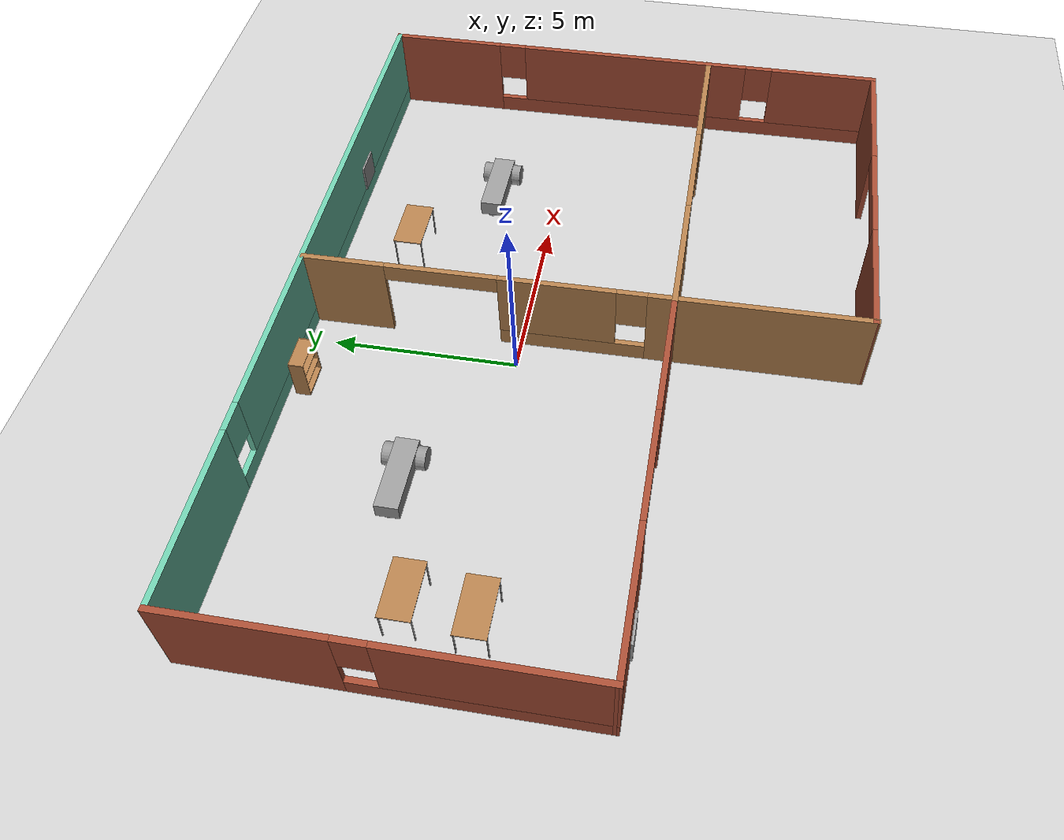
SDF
<sdf version="1.6">
 <world name="default">
  <plugin name="Welcome_Message" filename="libWelcome_Message.so"/>
  <light name="sun" type="directional">
   <pose>0 0 10 0 -0 0</pose>
   <diffuse>0.8 0.8 0.8 1</diffuse>
   <specular>0.2 0.2 0.2 1</specular>
   <attenuation>
    <range>1000</range>
    <constant>0.9</constant>
    <linear>0.01</linear>
    <quadratic>0.001</quadratic>
   </attenuation>
   <direction>-0.5 0.1 -0.9</direction>
  </light>
  <model name="ground_plane">
   <static>1</static>
   <link name="link">
    <collision name="collision">
     <geometry><plane><normal>0 0 1</normal><size>100 100</size></plane></geometry>
     <surface>
      <contact><collide_bitmask>65535</collide_bitmask></contact>
      <friction><ode><mu>100</mu><mu2>50</mu2></ode></friction>
     </surface>
    </collision>
    <visual name="visual">
     <cast_shadows>0</cast_shadows>
     <geometry><plane><normal>0 0 1</normal><size>100 100</size></plane></geometry>
     <material>
      <script><uri>file://media/materials/scripts/gazebo.material</uri><name>Gazebo/Grey</name></script>
     </material>
    </visual>
   </link>
  </model>
  <gravity>0 0 -9.8</gravity>
  <magnetic_field>6e-06 2.3e-05 -4.2e-05</magnetic_field>
  <atmosphere type="adiabatic"/>
  <physics name="default_physics" default="0" type="ode">
   <max_step_size>0.001</max_step_size>
   <real_time_factor>1</real_time_factor>
   <real_time_update_rate>1000</real_time_update_rate>
  </physics>
  <scene><ambient>0.4 0.4 0.4 1</ambient><background>0.7 0.7 0.7 1</background><shadows>1</shadows></scene>
  <audio><device>default</device></audio>
  <spherical_coordinates>
   <surface_model>EARTH_WGS84</surface_model>
   <latitude_deg>0</latitude_deg>
   <longitude_deg>0</longitude_deg>
   <elevation>0</elevation>
   <heading_deg>0</heading_deg>
  </spherical_coordinates>
  <model name="Building">
   <pose>0.681193 -1.65168 0 0 -0 0</pose>
   <link name="Wall_0">
    <pose>-0.035596 7.44422 0 0 -0 -0.001555</pose>
    <visual name="Wall_0_Visual_0">
     <pose>-7.76242 0 1.25 0 -0 0</pose>
     <geometry><box><size>4.564 0.15 2.5</size></box></geometry>
     <material>
      <script><uri>file://media/materials/scripts/gazebo.material</uri><name>Gazebo/Grey</name></script>
      <ambient>0.435294 0.796078 0.67451 1</ambient>
     </material>
     <meta><layer>0</layer></meta>
    </visual>
    <collision name="Wall_0_Collision_0">
     <geometry><box><size>4.564 0.15 2.5</size></box></geometry>
     <pose>-7.76242 0 1.25 0 -0 0</pose>
    </collision>
    <visual name="Wall_0_Visual_1">
     <pose>2.282 0 0.25 0 -0 0</pose>
     <geometry><box><size>15.5248 0.15 0.5</size></box></geometry>
     <material>
      <script><uri>file://media/materials/scripts/gazebo.material</uri><name>Gazebo/Grey</name></script>
      <ambient>0.435294 0.796078 0.67451 1</ambient>
     </material>
     <meta><layer>0</layer></meta>
    </visual>
    <collision name="Wall_0_Collision_1">
     <geometry><box><size>15.5248 0.15 0.5</size></box></geometry>
     <pose>2.282 0 0.25 0 -0 0</pose>
    </collision>
    <visual name="Wall_0_Visual_2">
     <pose>2.682 0 1.5 0 -0 0</pose>
     <geometry><box><size>14.7248 0.15 2</size></box></geometry>
     <material>
      <script><uri>file://media/materials/scripts/gazebo.material</uri><name>Gazebo/Grey</name></script>
      <ambient>0.435294 0.796078 0.67451 1</ambient>
     </material>
     <meta><layer>0</layer></meta>
    </visual>
    <collision name="Wall_0_Collision_2">
     <geometry><box><size>14.7248 0.15 2</size></box></geometry>
     <pose>2.682 0 1.5 0 -0 0</pose>
    </collision>
    <visual name="Wall_0_Visual_3">
     <pose>-5.08042 0 1.9 0 -0 0</pose>
     <geometry><box><size>0.8 0.15 1.2</size></box></geometry>
     <material>
      <script><uri>file://media/materials/scripts/gazebo.material</uri><name>Gazebo/Grey</name></script>
      <ambient>0.435294 0.796078 0.67451 1</ambient>
     </material>
     <meta><layer>0</layer></meta>
    </visual>
    <collision name="Wall_0_Collision_3">
     <geometry><box><size>0.8 0.15 1.2</size></box></geometry>
     <pose>-5.08042 0 1.9 0 -0 0</pose>
    </collision>
   </link>
   <link name="Wall_10">
    <pose>0.170743 -0.034647 0 0 -0 1.57755</pose>
    <visual name="Wall_10_Visual_0">
     <pose>-4.58028 0 1.25 0 -0 0</pose>
     <geometry><box><size>5.83943 0.15 2.5</size></box></geometry>
     <material>
      <script><uri>file://media/materials/scripts/gazebo.material</uri><name>Gazebo/Wood</name></script>
      <ambient>1 1 1 1</ambient>
     </material>
     <meta><layer>0</layer></meta>
    </visual>
    <collision name="Wall_10_Collision_0">
     <geometry><box><size>5.83943 0.15 2.5</size></box></geometry>
     <pose>-4.58028 0 1.25 0 -0 0</pose>
    </collision>
    <visual name="Wall_10_Visual_1">
     <pose>6.37599 0 1.25 0 -0 0</pose>
     <geometry><box><size>2.24801 0.15 2.5</size></box></geometry>
     <material>
      <script><uri>file://media/materials/scripts/gazebo.material</uri><name>Gazebo/Wood</name></script>
      <ambient>1 1 1 1</ambient>
     </material>
     <meta><layer>0</layer></meta>
    </visual>
    <collision name="Wall_10_Collision_1">
     <geometry><box><size>2.24801 0.15 2.5</size></box></geometry>
     <pose>6.37599 0 1.25 0 -0 0</pose>
    </collision>
    <visual name="Wall_10_Visual_2">
     <pose>0.29571 0 0.25 0 -0 0</pose>
     <geometry><box><size>3.91255 0.15 0.5</size></box></geometry>
     <material>
      <script><uri>file://media/materials/scripts/gazebo.material</uri><name>Gazebo/Wood</name></script>
      <ambient>1 1 1 1</ambient>
     </material>
     <meta><layer>0</layer></meta>
    </visual>
    <collision name="Wall_10_Collision_2">
     <geometry><box><size>3.91255 0.15 0.5</size></box></geometry>
     <pose>0.29571 0 0.25 0 -0 0</pose>
    </collision>
    <visual name="Wall_10_Visual_3">
     <pose>0.69571 0 1.5 0 -0 0</pose>
     <geometry><box><size>3.11255 0.15 2</size></box></geometry>
     <material>
      <script><uri>file://media/materials/scripts/gazebo.material</uri><name>Gazebo/Wood</name></script>
      <ambient>1 1 1 1</ambient>
     </material>
     <meta><layer>0</layer></meta>
    </visual>
    <collision name="Wall_10_Collision_3">
     <geometry><box><size>3.11255 0.15 2</size></box></geometry>
     <pose>0.69571 0 1.5 0 -0 0</pose>
    </collision>
    <visual name="Wall_10_Visual_4">
     <pose>-1.26057 0 1.9 0 -0 0</pose>
     <geometry><box><size>0.8 0.15 1.2</size></box></geometry>
     <material>
      <script><uri>file://media/materials/scripts/gazebo.material</uri><name>Gazebo/Wood</name></script>
      <ambient>1 1 1 1</ambient>
     </material>
     <meta><layer>0</layer></meta>
    </visual>
    <collision name="Wall_10_Collision_4">
     <geometry><box><size>0.8 0.15 1.2</size></box></geometry>
     <pose>-1.26057 0 1.9 0 -0 0</pose>
    </collision>
    <visual name="Wall_10_Visual_5">
     <pose>3.75199 0 2.25 0 -0 0</pose>
     <geometry><box><size>3 0.15 0.5</size></box></geometry>
     <material>
      <script><uri>file://media/materials/scripts/gazebo.material</uri><name>Gazebo/Wood</name></script>
      <ambient>1 1 1 1</ambient>
     </material>
     <meta><layer>0</layer></meta>
    </visual>
    <collision name="Wall_10_Collision_5">
     <geometry><box><size>3 0.15 0.5</size></box></geometry>
     <pose>3.75199 0 2.25 0 -0 0</pose>
    </collision>
   </link>
   <link name="Wall_12">
    <pose>5.0939 -2.39528 0 0 -0 0</pose>
    <visual name="Wall_12_Visual_0">
     <pose>-3.23118 0 1.25 0 -0 0</pose>
     <geometry><box><size>3.53764 0.15 2.5</size></box></geometry>
     <material>
      <script><uri>file://media/materials/scripts/gazebo.material</uri><name>Gazebo/Wood</name></script>
      <ambient>1 1 1 1</ambient>
     </material>
     <meta><layer>0</layer></meta>
    </visual>
    <collision name="Wall_12_Collision_0">
     <geometry><box><size>3.53764 0.15 2.5</size></box></geometry>
     <pose>-3.23118 0 1.25 0 -0 0</pose>
    </collision>
    <visual name="Wall_12_Visual_1">
     <pose>3.26882 0 1.25 0 -0 0</pose>
     <geometry><box><size>3.46236 0.15 2.5</size></box></geometry>
     <material>
      <script><uri>file://media/materials/scripts/gazebo.material</uri><name>Gazebo/Wood</name></script>
      <ambient>1 1 1 1</ambient>
     </material>
     <meta><layer>0</layer></meta>
    </visual>
    <collision name="Wall_12_Collision_1">
     <geometry><box><size>3.46236 0.15 2.5</size></box></geometry>
     <pose>3.26882 0 1.25 0 -0 0</pose>
    </collision>
    <visual name="Wall_12_Visual_2">
     <pose>0.037642 0 2.25 0 -0 0</pose>
     <geometry><box><size>3 0.15 0.5</size></box></geometry>
     <material>
      <script><uri>file://media/materials/scripts/gazebo.material</uri><name>Gazebo/Wood</name></script>
      <ambient>1 1 1 1</ambient>
     </material>
     <meta><layer>0</layer></meta>
    </visual>
    <collision name="Wall_12_Collision_2">
     <geometry><box><size>3 0.15 0.5</size></box></geometry>
     <pose>0.037642 0 2.25 0 -0 0</pose>
    </collision>
   </link>
   <link name="Wall_2">
    <pose>-10.0206 2.53472 0 0 -0 -1.57394</pose>
    <visual name="Wall_2_Visual_0">
     <pose>-2.98846 0 1.25 0 -0 0</pose>
     <geometry><box><size>4.0232 0.15 2.5</size></box></geometry>
     <material>
      <script><uri>file://media/materials/scripts/gazebo.material</uri><name>Gazebo/Bricks</name></script>
      <ambient>1 1 1 1</ambient>
     </material>
     <meta><layer>0</layer></meta>
    </visual>
    <collision name="Wall_2_Collision_0">
     <geometry><box><size>4.0232 0.15 2.5</size></box></geometry>
     <pose>-2.98846 0 1.25 0 -0 0</pose>
    </collision>
    <visual name="Wall_2_Visual_1">
     <pose>2.0116 0 0.25 0 -0 0</pose>
     <geometry><box><size>5.97691 0.15 0.5</size></box></geometry>
     <material>
      <script><uri>file://media/materials/scripts/gazebo.material</uri><name>Gazebo/Bricks</name></script>
      <ambient>1 1 1 1</ambient>
     </material>
     <meta><layer>0</layer></meta>
    </visual>
    <collision name="Wall_2_Collision_1">
     <geometry><box><size>5.97691 0.15 0.5</size></box></geometry>
     <pose>2.0116 0 0.25 0 -0 0</pose>
    </collision>
    <visual name="Wall_2_Visual_2">
     <pose>2.4116 0 1.5 0 -0 0</pose>
     <geometry><box><size>5.17691 0.15 2</size></box></geometry>
     <material>
      <script><uri>file://media/materials/scripts/gazebo.material</uri><name>Gazebo/Bricks</name></script>
      <ambient>1 1 1 1</ambient>
     </material>
     <meta><layer>0</layer></meta>
    </visual>
    <collision name="Wall_2_Collision_2">
     <geometry><box><size>5.17691 0.15 2</size></box></geometry>
     <pose>2.4116 0 1.5 0 -0 0</pose>
    </collision>
    <visual name="Wall_2_Visual_3">
     <pose>-0.576857 0 1.9 0 -0 0</pose>
     <geometry><box><size>0.8 0.15 1.2</size></box></geometry>
     <material>
      <script><uri>file://media/materials/scripts/gazebo.material</uri><name>Gazebo/Bricks</name></script>
      <ambient>1 1 1 1</ambient>
     </material>
     <meta><layer>0</layer></meta>
    </visual>
    <collision name="Wall_2_Collision_3">
     <geometry><box><size>0.8 0.15 1.2</size></box></geometry>
     <pose>-0.576857 0 1.9 0 -0 0</pose>
    </collision>
   </link>
   <link name="Wall_4">
    <pose>-4.9861 -2.39028 0 0 -0 0</pose>
    <visual name="Wall_4_Visual_0">
     <pose>-3.23437 0 1.25 0 -0 0</pose>
     <geometry><box><size>3.78126 0.15 2.5</size></box></geometry>
     <material>
      <script><uri>file://media/materials/scripts/gazebo.material</uri><name>Gazebo/Bricks</name></script>
      <ambient>1 1 1 1</ambient>
     </material>
     <meta><layer>0</layer></meta>
    </visual>
    <collision name="Wall_4_Collision_0">
     <geometry><box><size>3.78126 0.15 2.5</size></box></geometry>
     <pose>-3.23437 0 1.25 0 -0 0</pose>
    </collision>
    <visual name="Wall_4_Visual_1">
     <pose>3.39063 0 1.25 0 -0 0</pose>
     <geometry><box><size>3.46874 0.15 2.5</size></box></geometry>
     <material>
      <script><uri>file://media/materials/scripts/gazebo.material</uri><name>Gazebo/Bricks</name></script>
      <ambient>1 1 1 1</ambient>
     </material>
     <meta><layer>0</layer></meta>
    </visual>
    <collision name="Wall_4_Collision_1">
     <geometry><box><size>3.46874 0.15 2.5</size></box></geometry>
     <pose>3.39063 0 1.25 0 -0 0</pose>
    </collision>
    <visual name="Wall_4_Visual_2">
     <pose>0.15626 0 2.25 0 -0 0</pose>
     <geometry><box><size>3 0.15 0.5</size></box></geometry>
     <material>
      <script><uri>file://media/materials/scripts/gazebo.material</uri><name>Gazebo/Bricks</name></script>
      <ambient>1 1 1 1</ambient>
     </material>
     <meta><layer>0</layer></meta>
    </visual>
    <collision name="Wall_4_Collision_2">
     <geometry><box><size>3 0.15 0.5</size></box></geometry>
     <pose>0.15626 0 2.25 0 -0 0</pose>
    </collision>
   </link>
   <link name="Wall_6">
    <pose>9.98486 0.004038 0 0 -0 -1.56393</pose>
    <visual name="Wall_6_Visual_0">
     <pose>-5.83702 0 1.25 0 -0 0</pose>
     <geometry><box><size>3.32597 0.15 2.5</size></box></geometry>
     <material>
      <script><uri>file://media/materials/scripts/gazebo.material</uri><name>Gazebo/Bricks</name></script>
      <ambient>1 1 1 1</ambient>
     </material>
     <meta><layer>0</layer></meta>
    </visual>
    <collision name="Wall_6_Collision_0">
     <geometry><box><size>3.32597 0.15 2.5</size></box></geometry>
     <pose>-5.83702 0 1.25 0 -0 0</pose>
    </collision>
    <visual name="Wall_6_Visual_1">
     <pose>1.66298 0 0.25 0 -0 0</pose>
     <geometry><box><size>11.674 0.15 0.5</size></box></geometry>
     <material>
      <script><uri>file://media/materials/scripts/gazebo.material</uri><name>Gazebo/Bricks</name></script>
      <ambient>1 1 1 1</ambient>
     </material>
     <meta><layer>0</layer></meta>
    </visual>
    <collision name="Wall_6_Collision_1">
     <geometry><box><size>11.674 0.15 0.5</size></box></geometry>
     <pose>1.66298 0 0.25 0 -0 0</pose>
    </collision>
    <visual name="Wall_6_Visual_2">
     <pose>0.080934 0 1.5 0 -0 0</pose>
     <geometry><box><size>6.90993 0.15 2</size></box></geometry>
     <material>
      <script><uri>file://media/materials/scripts/gazebo.material</uri><name>Gazebo/Bricks</name></script>
      <ambient>1 1 1 1</ambient>
     </material>
     <meta><layer>0</layer></meta>
    </visual>
    <collision name="Wall_6_Collision_2">
     <geometry><box><size>6.90993 0.15 2</size></box></geometry>
     <pose>0.080934 0 1.5 0 -0 0</pose>
    </collision>
    <visual name="Wall_6_Visual_3">
     <pose>5.91795 0 1.5 0 -0 0</pose>
     <geometry><box><size>3.1641 0.15 2</size></box></geometry>
     <material>
      <script><uri>file://media/materials/scripts/gazebo.material</uri><name>Gazebo/Bricks</name></script>
      <ambient>1 1 1 1</ambient>
     </material>
     <meta><layer>0</layer></meta>
    </visual>
    <collision name="Wall_6_Collision_3">
     <geometry><box><size>3.1641 0.15 2</size></box></geometry>
     <pose>5.91795 0 1.5 0 -0 0</pose>
    </collision>
    <visual name="Wall_6_Visual_4">
     <pose>-3.77403 0 1.9 0 -0 0</pose>
     <geometry><box><size>0.8 0.15 1.2</size></box></geometry>
     <material>
      <script><uri>file://media/materials/scripts/gazebo.material</uri><name>Gazebo/Bricks</name></script>
      <ambient>1 1 1 1</ambient>
     </material>
     <meta><layer>0</layer></meta>
    </visual>
    <collision name="Wall_6_Collision_4">
     <geometry><box><size>0.8 0.15 1.2</size></box></geometry>
     <pose>-3.77403 0 1.9 0 -0 0</pose>
    </collision>
    <visual name="Wall_6_Visual_5">
     <pose>3.9359 0 1.9 0 -0 0</pose>
     <geometry><box><size>0.8 0.15 1.2</size></box></geometry>
     <material>
      <script><uri>file://media/materials/scripts/gazebo.material</uri><name>Gazebo/Bricks</name></script>
      <ambient>1 1 1 1</ambient>
     </material>
     <meta><layer>0</layer></meta>
    </visual>
    <collision name="Wall_6_Collision_5">
     <geometry><box><size>0.8 0.15 1.2</size></box></geometry>
     <pose>3.9359 0 1.9 0 -0 0</pose>
    </collision>
   </link>
   <link name="Wall_8">
    <pose>5.11307 -7.42476 0 0 -0 -3.14075</pose>
    <visual name="Wall_8_Visual_0">
     <pose>-3.17532 0 1.25 0 -0 0</pose>
     <geometry><box><size>3.58369 0.15 2.5</size></box></geometry>
     <material>
      <script><uri>file://media/materials/scripts/gazebo.material</uri><name>Gazebo/Bricks</name></script>
      <ambient>1 1 1 1</ambient>
     </material>
     <meta><layer>0</layer></meta>
    </visual>
    <collision name="Wall_8_Collision_0">
     <geometry><box><size>3.58369 0.15 2.5</size></box></geometry>
     <pose>-3.17532 0 1.25 0 -0 0</pose>
    </collision>
    <visual name="Wall_8_Visual_1">
     <pose>3.29184 0 1.25 0 -0 0</pose>
     <geometry><box><size>3.35064 0.15 2.5</size></box></geometry>
     <material>
      <script><uri>file://media/materials/scripts/gazebo.material</uri><name>Gazebo/Bricks</name></script>
      <ambient>1 1 1 1</ambient>
     </material>
     <meta><layer>0</layer></meta>
    </visual>
    <collision name="Wall_8_Collision_1">
     <geometry><box><size>3.35064 0.15 2.5</size></box></geometry>
     <pose>3.29184 0 1.25 0 -0 0</pose>
    </collision>
    <visual name="Wall_8_Visual_2">
     <pose>0.116526 0 2.25 0 -0 0</pose>
     <geometry><box><size>3 0.15 0.5</size></box></geometry>
     <material>
      <script><uri>file://media/materials/scripts/gazebo.material</uri><name>Gazebo/Bricks</name></script>
      <ambient>1 1 1 1</ambient>
     </material>
     <meta><layer>0</layer></meta>
    </visual>
    <collision name="Wall_8_Collision_2">
     <geometry><box><size>3 0.15 0.5</size></box></geometry>
     <pose>0.116526 0 2.25 0 -0 0</pose>
    </collision>
   </link>
   <link name="Window_3">
    <collision name="Window_3_Collision">
     <geometry><box><size>0.8 0.17 0.8</size></box></geometry>
     <pose>0 0 0.4 0 -0 0</pose>
    </collision>
    <visual name="Window_3_Visual">
     <pose>0 0 0.4 0 -0 0</pose>
     <geometry><box><size>0.8 0.17 0.8</size></box></geometry>
     <material>
      <script><uri>file://media/materials/scripts/gazebo.material</uri><name>Gazebo/Grey</name></script>
     </material>
    </visual>
    <pose>5.26898 7.39825 0.5 0 -0 0</pose>
   </link>
   <link name="Window_5">
    <collision name="Window_5_Collision">
     <geometry><box><size>0.8 0.17 0.8</size></box></geometry>
     <pose>0 0 0.4 0 -0 0</pose>
    </collision>
    <visual name="Window_5_Visual">
     <pose>0 0 0.4 0 -0 0</pose>
     <geometry><box><size>0.8 0.17 0.8</size></box></geometry>
     <material>
      <script><uri>file://media/materials/scripts/gazebo.material</uri><name>Gazebo/Grey</name></script>
     </material>
    </visual>
    <pose>-8.24392 -2.44382 0.5 0 -0 0</pose>
   </link>
   <static>1</static>
  </model>
  <model name="Caster_robot">
   <link name="link_0">
    <inertial>
     <mass>0.549698</mass>
     <inertia>
      <ixx>0.0264299</ixx>
      <ixy>0</ixy>
      <ixz>0</ixz>
      <iyy>0.193488</iyy>
      <iyz>0</iyz>
      <izz>0.201771</izz>
     </inertia>
    </inertial>
    <pose>0.056282 0.000321 0.4 0 -0 0</pose>
    <visual name="visual">
     <geometry><box><size>2.00644 0.615539 0.445063</size></box></geometry>
     <material>
      <lighting>1</lighting>
      <script><uri>file://media/materials/scripts/gazebo.material</uri><name>Gazebo/Grey</name></script>
      <shader type="vertex"><normal_map>__default__</normal_map></shader>
      <ambient>0.3 0.3 0.3 1</ambient>
      <diffuse>0.7 0.7 0.7 1</diffuse>
      <specular>0.01 0.01 0.01 1</specular>
      <emissive>0 0 0 1</emissive>
     </material>
    </visual>
    <collision name="collision">
     <geometry><box><size>2.00644 0.615539 0.445063</size></box></geometry>
     <surface>
      <friction>
       <ode><mu>1</mu><mu2>1</mu2><fdir1>0 0 0</fdir1><slip1>0</slip1><slip2>0</slip2></ode>
       <torsional>
        <coefficient>1</coefficient>
        <patch_radius>0</patch_radius>
        <surface_radius>0</surface_radius>
        <use_patch_radius>1</use_patch_radius>
        <ode><slip>0</slip></ode>
       </torsional>
      </friction>
      <bounce><restitution_coefficient>0</restitution_coefficient><threshold>1e+06</threshold></bounce>
      <contact>
       <collide_without_contact>0</collide_without_contact>
       <collide_without_contact_bitmask>1</collide_without_contact_bitmask>
       <collide_bitmask>1</collide_bitmask>
       <ode>
        <soft_cfm>0</soft_cfm>
        <soft_erp>0.2</soft_erp>
        <kp>1e+13</kp>
        <kd>1</kd>
        <max_vel>0.01</max_vel>
        <min_depth>0</min_depth>
       </ode>
       <bullet>
        <split_impulse>1</split_impulse>
        <split_impulse_penetration_threshold>-0.01</split_impulse_penetration_threshold>
        <soft_cfm>0</soft_cfm>
        <soft_erp>0.2</soft_erp>
        <kp>1e+13</kp>
        <kd>1</kd>
       </bullet>
      </contact>
     </surface>
    </collision>
   </link>
   <link name="link_2">
    <inertial>
     <mass>1</mass>
     <inertia><ixx>0.145833</ixx><ixy>0</ixy><ixz>0</ixz><iyy>0.145833</iyy><iyz>0</iyz><izz>0.125</izz></inertia>
    </inertial>
    <pose>0.759504 -0.432478 0.3 1.5707 -0 0</pose>
    <visual name="visual">
     <geometry><cylinder><radius>0.3</radius><length>0.25</length></cylinder></geometry>
     <material>
      <lighting>1</lighting>
      <script><uri>file://media/materials/scripts/gazebo.material</uri><name>Gazebo/Grey</name></script>
      <shader type="vertex"><normal_map>__default__</normal_map></shader>
      <ambient>0.3 0.3 0.3 1</ambient>
      <diffuse>0.7 0.7 0.7 1</diffuse>
      <specular>0.01 0.01 0.01 1</specular>
      <emissive>0 0 0 1</emissive>
     </material>
    </visual>
    <collision name="collision">
     <geometry><cylinder><radius>0.3</radius><length>0.25</length></cylinder></geometry>
     <surface>
      <friction>
       <ode><mu>1</mu><mu2>1</mu2><fdir1>0 0 0</fdir1><slip1>0</slip1><slip2>0</slip2></ode>
       <torsional>
        <coefficient>1</coefficient>
        <patch_radius>0</patch_radius>
        <surface_radius>0</surface_radius>
        <use_patch_radius>1</use_patch_radius>
        <ode><slip>0</slip></ode>
       </torsional>
      </friction>
      <bounce><restitution_coefficient>0</restitution_coefficient><threshold>1e+06</threshold></bounce>
      <contact>
       <collide_without_contact>0</collide_without_contact>
       <collide_without_contact_bitmask>1</collide_without_contact_bitmask>
       <collide_bitmask>1</collide_bitmask>
       <ode>
        <soft_cfm>0</soft_cfm>
        <soft_erp>0.2</soft_erp>
        <kp>1e+13</kp>
        <kd>1</kd>
        <max_vel>0.01</max_vel>
        <min_depth>0</min_depth>
       </ode>
       <bullet>
        <split_impulse>1</split_impulse>
        <split_impulse_penetration_threshold>-0.01</split_impulse_penetration_threshold>
        <soft_cfm>0</soft_cfm>
        <soft_erp>0.2</soft_erp>
        <kp>1e+13</kp>
        <kd>1</kd>
       </bullet>
      </contact>
     </surface>
    </collision>
   </link>
   <link name="link_2_clone">
    <inertial>
     <mass>1</mass>
     <inertia><ixx>0.145833</ixx><ixy>0</ixy><ixz>0</ixz><iyy>0.145833</iyy><iyz>0</iyz><izz>0.125</izz></inertia>
    </inertial>
    <pose>0.759504 0.433119 0.3 1.5707 -0 0</pose>
    <visual name="visual">
     <geometry><cylinder><radius>0.3</radius><length>0.25</length></cylinder></geometry>
     <material>
      <lighting>1</lighting>
      <script><uri>file://media/materials/scripts/gazebo.material</uri><name>Gazebo/Grey</name></script>
      <shader type="vertex"><normal_map>__default__</normal_map></shader>
      <ambient>0.3 0.3 0.3 1</ambient>
      <diffuse>0.7 0.7 0.7 1</diffuse>
      <specular>0.01 0.01 0.01 1</specular>
      <emissive>0 0 0 1</emissive>
     </material>
    </visual>
    <collision name="collision">
     <geometry><cylinder><radius>0.3</radius><length>0.25</length></cylinder></geometry>
     <surface>
      <friction>
       <ode><mu>1</mu><mu2>1</mu2><fdir1>0 0 0</fdir1><slip1>0</slip1><slip2>0</slip2></ode>
       <torsional>
        <coefficient>1</coefficient>
        <patch_radius>0</patch_radius>
        <surface_radius>0</surface_radius>
        <use_patch_radius>1</use_patch_radius>
        <ode><slip>0</slip></ode>
       </torsional>
      </friction>
      <bounce><restitution_coefficient>0</restitution_coefficient><threshold>1e+06</threshold></bounce>
      <contact>
       <collide_without_contact>0</collide_without_contact>
       <collide_without_contact_bitmask>1</collide_without_contact_bitmask>
       <collide_bitmask>1</collide_bitmask>
       <ode>
        <soft_cfm>0</soft_cfm>
        <soft_erp>0.2</soft_erp>
        <kp>1e+13</kp>
        <kd>1</kd>
        <max_vel>0.01</max_vel>
        <min_depth>0</min_depth>
       </ode>
       <bullet>
        <split_impulse>1</split_impulse>
        <split_impulse_penetration_threshold>-0.01</split_impulse_penetration_threshold>
        <soft_cfm>0</soft_cfm>
        <soft_erp>0.2</soft_erp>
        <kp>1e+13</kp>
        <kd>1</kd>
       </bullet>
      </contact>
     </surface>
    </collision>
   </link>
   <link name="link_3">
    <inertial>
     <mass>1</mass>
     <inertia><ixx>0.1</ixx><ixy>0</ixy><ixz>0</ixz><iyy>0.1</iyy><iyz>0</iyz><izz>0.1</izz></inertia>
    </inertial>
    <pose>-0.746939 0.000321 0.2 0 -0 0</pose>
    <visual name="visual">
     <geometry><sphere><radius>0.2</radius></sphere></geometry>
     <material>
      <lighting>1</lighting>
      <script><uri>file://media/materials/scripts/gazebo.material</uri><name>Gazebo/Grey</name></script>
      <shader type="vertex"><normal_map>__default__</normal_map></shader>
      <ambient>0.3 0.3 0.3 1</ambient>
      <diffuse>0.7 0.7 0.7 1</diffuse>
      <specular>0.01 0.01 0.01 1</specular>
      <emissive>0 0 0 1</emissive>
     </material>
    </visual>
    <collision name="collision">
     <geometry><sphere><radius>0.2</radius></sphere></geometry>
     <surface>
      <friction>
       <ode><mu>1</mu><mu2>1</mu2><fdir1>0 0 0</fdir1><slip1>0</slip1><slip2>0</slip2></ode>
       <torsional>
        <coefficient>1</coefficient>
        <patch_radius>0</patch_radius>
        <surface_radius>0</surface_radius>
        <use_patch_radius>1</use_patch_radius>
        <ode><slip>0</slip></ode>
       </torsional>
      </friction>
      <bounce><restitution_coefficient>0</restitution_coefficient><threshold>1e+06</threshold></bounce>
      <contact>
       <collide_without_contact>0</collide_without_contact>
       <collide_without_contact_bitmask>1</collide_without_contact_bitmask>
       <collide_bitmask>1</collide_bitmask>
       <ode>
        <soft_cfm>0</soft_cfm>
        <soft_erp>0.2</soft_erp>
        <kp>1e+13</kp>
        <kd>1</kd>
        <max_vel>0.01</max_vel>
        <min_depth>0</min_depth>
       </ode>
       <bullet>
        <split_impulse>1</split_impulse>
        <split_impulse_penetration_threshold>-0.01</split_impulse_penetration_threshold>
        <soft_cfm>0</soft_cfm>
        <soft_erp>0.2</soft_erp>
        <kp>1e+13</kp>
        <kd>1</kd>
       </bullet>
      </contact>
     </surface>
    </collision>
   </link>
   <joint name="link_0_JOINT_0" type="revolute">
    <parent>link_0</parent>
    <child>link_2_clone</child>
    <axis>
     <xyz>0 0 1</xyz>
     <use_parent_model_frame>0</use_parent_model_frame>
     <limit>
      <lower>-1.79769e+308</lower>
      <upper>1.79769e+308</upper>
      <effort>-1</effort>
      <velocity>-1</velocity>
     </limit>
     <dynamics>
      <spring_reference>0</spring_reference>
      <spring_stiffness>0</spring_stiffness>
      <damping>0</damping>
     </dynamics>
    </axis>
    <physics>
     <ode><limit><cfm>0</cfm><erp>0.2</erp></limit><suspension><cfm>0</cfm><erp>0.2</erp></suspension></ode>
    </physics>
   </joint>
   <joint name="link_0_JOINT_1" type="revolute">
    <parent>link_0</parent>
    <child>link_2</child>
    <axis>
     <xyz>0 0 1</xyz>
     <use_parent_model_frame>0</use_parent_model_frame>
     <limit>
      <lower>-1.79769e+308</lower>
      <upper>1.79769e+308</upper>
      <effort>-1</effort>
      <velocity>-1</velocity>
     </limit>
     <dynamics>
      <spring_reference>0</spring_reference>
      <spring_stiffness>0</spring_stiffness>
      <damping>0</damping>
     </dynamics>
    </axis>
    <physics>
     <ode><limit><cfm>0</cfm><erp>0.2</erp></limit><suspension><cfm>0</cfm><erp>0.2</erp></suspension></ode>
    </physics>
   </joint>
   <joint name="link_0_JOINT_2" type="ball">
    <parent>link_0</parent>
    <child>link_3</child>
    <physics>
     <ode><limit><cfm>0</cfm><erp>0.2</erp></limit><suspension><cfm>0</cfm><erp>0.2</erp></suspension></ode>
    </physics>
   </joint>
   <static>0</static>
   <pose>-4.226 2.09032 3e-06 0 -1.1e-05 -0.008436</pose>
  </model>
  <model name="Caster_robot_0">
   <link name="link_0">
    <inertial>
     <mass>0.549698</mass>
     <inertia>
      <ixx>0.0264299</ixx>
      <ixy>0</ixy>
      <ixz>0</ixz>
      <iyy>0.193488</iyy>
      <iyz>0</iyz>
      <izz>0.201771</izz>
     </inertia>
    </inertial>
    <pose>0.056282 0.000321 0.4 0 -0 0</pose>
    <visual name="visual">
     <geometry><box><size>2.00644 0.615539 0.445063</size></box></geometry>
     <material>
      <lighting>1</lighting>
      <script><uri>file://media/materials/scripts/gazebo.material</uri><name>Gazebo/Grey</name></script>
      <shader type="vertex"><normal_map>__default__</normal_map></shader>
      <ambient>0.3 0.3 0.3 1</ambient>
      <diffuse>0.7 0.7 0.7 1</diffuse>
      <specular>0.01 0.01 0.01 1</specular>
      <emissive>0 0 0 1</emissive>
     </material>
    </visual>
    <collision name="collision">
     <geometry><box><size>2.00644 0.615539 0.445063</size></box></geometry>
     <surface>
      <friction>
       <ode><mu>1</mu><mu2>1</mu2><fdir1>0 0 0</fdir1><slip1>0</slip1><slip2>0</slip2></ode>
       <torsional>
        <coefficient>1</coefficient>
        <patch_radius>0</patch_radius>
        <surface_radius>0</surface_radius>
        <use_patch_radius>1</use_patch_radius>
        <ode><slip>0</slip></ode>
       </torsional>
      </friction>
      <bounce><restitution_coefficient>0</restitution_coefficient><threshold>1e+06</threshold></bounce>
      <contact>
       <collide_without_contact>0</collide_without_contact>
       <collide_without_contact_bitmask>1</collide_without_contact_bitmask>
       <collide_bitmask>1</collide_bitmask>
       <ode>
        <soft_cfm>0</soft_cfm>
        <soft_erp>0.2</soft_erp>
        <kp>1e+13</kp>
        <kd>1</kd>
        <max_vel>0.01</max_vel>
        <min_depth>0</min_depth>
       </ode>
       <bullet>
        <split_impulse>1</split_impulse>
        <split_impulse_penetration_threshold>-0.01</split_impulse_penetration_threshold>
        <soft_cfm>0</soft_cfm>
        <soft_erp>0.2</soft_erp>
        <kp>1e+13</kp>
        <kd>1</kd>
       </bullet>
      </contact>
     </surface>
    </collision>
   </link>
   <link name="link_2">
    <inertial>
     <mass>1</mass>
     <inertia><ixx>0.145833</ixx><ixy>0</ixy><ixz>0</ixz><iyy>0.145833</iyy><iyz>0</iyz><izz>0.125</izz></inertia>
    </inertial>
    <pose>0.759504 -0.432478 0.3 1.5707 -0 0</pose>
    <visual name="visual">
     <geometry><cylinder><radius>0.3</radius><length>0.25</length></cylinder></geometry>
     <material>
      <lighting>1</lighting>
      <script><uri>file://media/materials/scripts/gazebo.material</uri><name>Gazebo/Grey</name></script>
      <shader type="vertex"><normal_map>__default__</normal_map></shader>
      <ambient>0.3 0.3 0.3 1</ambient>
      <diffuse>0.7 0.7 0.7 1</diffuse>
      <specular>0.01 0.01 0.01 1</specular>
      <emissive>0 0 0 1</emissive>
     </material>
    </visual>
    <collision name="collision">
     <geometry><cylinder><radius>0.3</radius><length>0.25</length></cylinder></geometry>
     <surface>
      <friction>
       <ode><mu>1</mu><mu2>1</mu2><fdir1>0 0 0</fdir1><slip1>0</slip1><slip2>0</slip2></ode>
       <torsional>
        <coefficient>1</coefficient>
        <patch_radius>0</patch_radius>
        <surface_radius>0</surface_radius>
        <use_patch_radius>1</use_patch_radius>
        <ode><slip>0</slip></ode>
       </torsional>
      </friction>
      <bounce><restitution_coefficient>0</restitution_coefficient><threshold>1e+06</threshold></bounce>
      <contact>
       <collide_without_contact>0</collide_without_contact>
       <collide_without_contact_bitmask>1</collide_without_contact_bitmask>
       <collide_bitmask>1</collide_bitmask>
       <ode>
        <soft_cfm>0</soft_cfm>
        <soft_erp>0.2</soft_erp>
        <kp>1e+13</kp>
        <kd>1</kd>
        <max_vel>0.01</max_vel>
        <min_depth>0</min_depth>
       </ode>
       <bullet>
        <split_impulse>1</split_impulse>
        <split_impulse_penetration_threshold>-0.01</split_impulse_penetration_threshold>
        <soft_cfm>0</soft_cfm>
        <soft_erp>0.2</soft_erp>
        <kp>1e+13</kp>
        <kd>1</kd>
       </bullet>
      </contact>
     </surface>
    </collision>
   </link>
   <link name="link_2_clone">
    <inertial>
     <mass>1</mass>
     <inertia><ixx>0.145833</ixx><ixy>0</ixy><ixz>0</ixz><iyy>0.145833</iyy><iyz>0</iyz><izz>0.125</izz></inertia>
    </inertial>
    <pose>0.759504 0.433119 0.3 1.5707 -0 0</pose>
    <visual name="visual">
     <geometry><cylinder><radius>0.3</radius><length>0.25</length></cylinder></geometry>
     <material>
      <lighting>1</lighting>
      <script><uri>file://media/materials/scripts/gazebo.material</uri><name>Gazebo/Grey</name></script>
      <shader type="vertex"><normal_map>__default__</normal_map></shader>
      <ambient>0.3 0.3 0.3 1</ambient>
      <diffuse>0.7 0.7 0.7 1</diffuse>
      <specular>0.01 0.01 0.01 1</specular>
      <emissive>0 0 0 1</emissive>
     </material>
    </visual>
    <collision name="collision">
     <geometry><cylinder><radius>0.3</radius><length>0.25</length></cylinder></geometry>
     <surface>
      <friction>
       <ode><mu>1</mu><mu2>1</mu2><fdir1>0 0 0</fdir1><slip1>0</slip1><slip2>0</slip2></ode>
       <torsional>
        <coefficient>1</coefficient>
        <patch_radius>0</patch_radius>
        <surface_radius>0</surface_radius>
        <use_patch_radius>1</use_patch_radius>
        <ode><slip>0</slip></ode>
       </torsional>
      </friction>
      <bounce><restitution_coefficient>0</restitution_coefficient><threshold>1e+06</threshold></bounce>
      <contact>
       <collide_without_contact>0</collide_without_contact>
       <collide_without_contact_bitmask>1</collide_without_contact_bitmask>
       <collide_bitmask>1</collide_bitmask>
       <ode>
        <soft_cfm>0</soft_cfm>
        <soft_erp>0.2</soft_erp>
        <kp>1e+13</kp>
        <kd>1</kd>
        <max_vel>0.01</max_vel>
        <min_depth>0</min_depth>
       </ode>
       <bullet>
        <split_impulse>1</split_impulse>
        <split_impulse_penetration_threshold>-0.01</split_impulse_penetration_threshold>
        <soft_cfm>0</soft_cfm>
        <soft_erp>0.2</soft_erp>
        <kp>1e+13</kp>
        <kd>1</kd>
       </bullet>
      </contact>
     </surface>
    </collision>
   </link>
   <link name="link_3">
    <inertial>
     <mass>1</mass>
     <inertia><ixx>0.1</ixx><ixy>0</ixy><ixz>0</ixz><iyy>0.1</iyy><iyz>0</iyz><izz>0.1</izz></inertia>
    </inertial>
    <pose>-0.746939 0.000321 0.2 0 -0 0</pose>
    <visual name="visual">
     <geometry><sphere><radius>0.2</radius></sphere></geometry>
     <material>
      <lighting>1</lighting>
      <script><uri>file://media/materials/scripts/gazebo.material</uri><name>Gazebo/Grey</name></script>
      <shader type="vertex"><normal_map>__default__</normal_map></shader>
      <ambient>0.3 0.3 0.3 1</ambient>
      <diffuse>0.7 0.7 0.7 1</diffuse>
      <specular>0.01 0.01 0.01 1</specular>
      <emissive>0 0 0 1</emissive>
     </material>
    </visual>
    <collision name="collision">
     <geometry><sphere><radius>0.2</radius></sphere></geometry>
     <surface>
      <friction>
       <ode><mu>1</mu><mu2>1</mu2><fdir1>0 0 0</fdir1><slip1>0</slip1><slip2>0</slip2></ode>
       <torsional>
        <coefficient>1</coefficient>
        <patch_radius>0</patch_radius>
        <surface_radius>0</surface_radius>
        <use_patch_radius>1</use_patch_radius>
        <ode><slip>0</slip></ode>
       </torsional>
      </friction>
      <bounce><restitution_coefficient>0</restitution_coefficient><threshold>1e+06</threshold></bounce>
      <contact>
       <collide_without_contact>0</collide_without_contact>
       <collide_without_contact_bitmask>1</collide_without_contact_bitmask>
       <collide_bitmask>1</collide_bitmask>
       <ode>
        <soft_cfm>0</soft_cfm>
        <soft_erp>0.2</soft_erp>
        <kp>1e+13</kp>
        <kd>1</kd>
        <max_vel>0.01</max_vel>
        <min_depth>0</min_depth>
       </ode>
       <bullet>
        <split_impulse>1</split_impulse>
        <split_impulse_penetration_threshold>-0.01</split_impulse_penetration_threshold>
        <soft_cfm>0</soft_cfm>
        <soft_erp>0.2</soft_erp>
        <kp>1e+13</kp>
        <kd>1</kd>
       </bullet>
      </contact>
     </surface>
    </collision>
   </link>
   <joint name="link_0_JOINT_0" type="revolute">
    <parent>link_0</parent>
    <child>link_2_clone</child>
    <axis>
     <xyz>0 0 1</xyz>
     <use_parent_model_frame>0</use_parent_model_frame>
     <limit>
      <lower>-1.79769e+308</lower>
      <upper>1.79769e+308</upper>
      <effort>-1</effort>
      <velocity>-1</velocity>
     </limit>
     <dynamics>
      <spring_reference>0</spring_reference>
      <spring_stiffness>0</spring_stiffness>
      <damping>0</damping>
     </dynamics>
    </axis>
    <physics>
     <ode><limit><cfm>0</cfm><erp>0.2</erp></limit><suspension><cfm>0</cfm><erp>0.2</erp></suspension></ode>
    </physics>
   </joint>
   <joint name="link_0_JOINT_1" type="revolute">
    <parent>link_0</parent>
    <child>link_2</child>
    <axis>
     <xyz>0 0 1</xyz>
     <use_parent_model_frame>0</use_parent_model_frame>
     <limit>
      <lower>-1.79769e+308</lower>
      <upper>1.79769e+308</upper>
      <effort>-1</effort>
      <velocity>-1</velocity>
     </limit>
     <dynamics>
      <spring_reference>0</spring_reference>
      <spring_stiffness>0</spring_stiffness>
      <damping>0</damping>
     </dynamics>
    </axis>
    <physics>
     <ode><limit><cfm>0</cfm><erp>0.2</erp></limit><suspension><cfm>0</cfm><erp>0.2</erp></suspension></ode>
    </physics>
   </joint>
   <joint name="link_0_JOINT_2" type="ball">
    <parent>link_0</parent>
    <child>link_3</child>
    <physics>
     <ode><limit><cfm>0</cfm><erp>0.2</erp></limit><suspension><cfm>0</cfm><erp>0.2</erp></suspension></ode>
    </physics>
   </joint>
   <static>0</static>
   <pose>6.35843 1.81356 5e-06 4e-06 -6e-06 -0.00832</pose>
  </model>
  <model name="table">
   <static>1</static>
   <link name="link">
    <collision name="surface">
     <pose>0 0 1 0 -0 0</pose>
     <geometry><box><size>1.5 0.8 0.03</size></box></geometry>
     <surface><friction><ode><mu>0.6</mu><mu2>0.6</mu2></ode></friction></surface>
    </collision>
    <visual name="visual1">
     <pose>0 0 1 0 -0 0</pose>
     <geometry><box><size>1.5 0.8 0.03</size></box></geometry>
     <material>
      <script><uri>file://media/materials/scripts/gazebo.material</uri><name>Gazebo/Wood</name></script>
     </material>
    </visual>
    <collision name="front_left_leg">
     <pose>0.68 0.38 0.5 0 -0 0</pose>
     <geometry><cylinder><radius>0.02</radius><length>1</length></cylinder></geometry>
    </collision>
    <visual name="front_left_leg">
     <pose>0.68 0.38 0.5 0 -0 0</pose>
     <geometry><cylinder><radius>0.02</radius><length>1</length></cylinder></geometry>
     <material>
      <script><uri>file://media/materials/scripts/gazebo.material</uri><name>Gazebo/Grey</name></script>
     </material>
    </visual>
    <collision name="front_right_leg">
     <pose>0.68 -0.38 0.5 0 -0 0</pose>
     <geometry><cylinder><radius>0.02</radius><length>1</length></cylinder></geometry>
    </collision>
    <visual name="front_right_leg">
     <pose>0.68 -0.38 0.5 0 -0 0</pose>
     <geometry><cylinder><radius>0.02</radius><length>1</length></cylinder></geometry>
     <material>
      <script><uri>file://media/materials/scripts/gazebo.material</uri><name>Gazebo/Grey</name></script>
     </material>
    </visual>
    <collision name="back_right_leg">
     <pose>-0.68 -0.38 0.5 0 -0 0</pose>
     <geometry><cylinder><radius>0.02</radius><length>1</length></cylinder></geometry>
    </collision>
    <visual name="back_right_leg">
     <pose>-0.68 -0.38 0.5 0 -0 0</pose>
     <geometry><cylinder><radius>0.02</radius><length>1</length></cylinder></geometry>
     <material>
      <script><uri>file://media/materials/scripts/gazebo.material</uri><name>Gazebo/Grey</name></script>
     </material>
    </visual>
    <collision name="back_left_leg">
     <pose>-0.68 0.38 0.5 0 -0 0</pose>
     <geometry><cylinder><radius>0.02</radius><length>1</length></cylinder></geometry>
    </collision>
    <visual name="back_left_leg">
     <pose>-0.68 0.38 0.5 0 -0 0</pose>
     <geometry><cylinder><radius>0.02</radius><length>1</length></cylinder></geometry>
     <material>
      <script><uri>file://media/materials/scripts/gazebo.material</uri><name>Gazebo/Grey</name></script>
     </material>
    </visual>
   </link>
   <pose>-7.34331 1.0628 0 0 -0 0</pose>
  </model>
  <model name="table_clone">
   <static>1</static>
   <link name="link">
    <collision name="surface">
     <pose>0 0 1 0 -0 0</pose>
     <geometry><box><size>1.5 0.8 0.03</size></box></geometry>
     <surface><friction><ode><mu>0.6</mu><mu2>0.6</mu2></ode></friction></surface>
    </collision>
    <visual name="visual1">
     <pose>0 0 1 0 -0 0</pose>
     <geometry><box><size>1.5 0.8 0.03</size></box></geometry>
     <material>
      <script><uri>file://media/materials/scripts/gazebo.material</uri><name>Gazebo/Wood</name></script>
     </material>
    </visual>
    <collision name="front_left_leg">
     <pose>0.68 0.38 0.5 0 -0 0</pose>
     <geometry><cylinder><radius>0.02</radius><length>1</length></cylinder></geometry>
    </collision>
    <visual name="front_left_leg">
     <pose>0.68 0.38 0.5 0 -0 0</pose>
     <geometry><cylinder><radius>0.02</radius><length>1</length></cylinder></geometry>
     <material>
      <script><uri>file://media/materials/scripts/gazebo.material</uri><name>Gazebo/Grey</name></script>
     </material>
    </visual>
    <collision name="front_right_leg">
     <pose>0.68 -0.38 0.5 0 -0 0</pose>
     <geometry><cylinder><radius>0.02</radius><length>1</length></cylinder></geometry>
    </collision>
    <visual name="front_right_leg">
     <pose>0.68 -0.38 0.5 0 -0 0</pose>
     <geometry><cylinder><radius>0.02</radius><length>1</length></cylinder></geometry>
     <material>
      <script><uri>file://media/materials/scripts/gazebo.material</uri><name>Gazebo/Grey</name></script>
     </material>
    </visual>
    <collision name="back_right_leg">
     <pose>-0.68 -0.38 0.5 0 -0 0</pose>
     <geometry><cylinder><radius>0.02</radius><length>1</length></cylinder></geometry>
    </collision>
    <visual name="back_right_leg">
     <pose>-0.68 -0.38 0.5 0 -0 0</pose>
     <geometry><cylinder><radius>0.02</radius><length>1</length></cylinder></geometry>
     <material>
      <script><uri>file://media/materials/scripts/gazebo.material</uri><name>Gazebo/Grey</name></script>
     </material>
    </visual>
    <collision name="back_left_leg">
     <pose>-0.68 0.38 0.5 0 -0 0</pose>
     <geometry><cylinder><radius>0.02</radius><length>1</length></cylinder></geometry>
    </collision>
    <visual name="back_left_leg">
     <pose>-0.68 0.38 0.5 0 -0 0</pose>
     <geometry><cylinder><radius>0.02</radius><length>1</length></cylinder></geometry>
     <material>
      <script><uri>file://media/materials/scripts/gazebo.material</uri><name>Gazebo/Grey</name></script>
     </material>
    </visual>
   </link>
   <pose>-7.48453 -0.656502 0 0 -0 0</pose>
  </model>
  <model name="table_clone_0">
   <static>1</static>
   <link name="link">
    <collision name="surface">
     <pose>0 0 1 0 -0 0</pose>
     <geometry><box><size>1.5 0.8 0.03</size></box></geometry>
     <surface><friction><ode><mu>0.6</mu><mu2>0.6</mu2></ode></friction></surface>
    </collision>
    <visual name="visual1">
     <pose>0 0 1 0 -0 0</pose>
     <geometry><box><size>1.5 0.8 0.03</size></box></geometry>
     <material>
      <script><uri>file://media/materials/scripts/gazebo.material</uri><name>Gazebo/Wood</name></script>
     </material>
    </visual>
    <collision name="front_left_leg">
     <pose>0.68 0.38 0.5 0 -0 0</pose>
     <geometry><cylinder><radius>0.02</radius><length>1</length></cylinder></geometry>
    </collision>
    <visual name="front_left_leg">
     <pose>0.68 0.38 0.5 0 -0 0</pose>
     <geometry><cylinder><radius>0.02</radius><length>1</length></cylinder></geometry>
     <material>
      <script><uri>file://media/materials/scripts/gazebo.material</uri><name>Gazebo/Grey</name></script>
     </material>
    </visual>
    <collision name="front_right_leg">
     <pose>0.68 -0.38 0.5 0 -0 0</pose>
     <geometry><cylinder><radius>0.02</radius><length>1</length></cylinder></geometry>
    </collision>
    <visual name="front_right_leg">
     <pose>0.68 -0.38 0.5 0 -0 0</pose>
     <geometry><cylinder><radius>0.02</radius><length>1</length></cylinder></geometry>
     <material>
      <script><uri>file://media/materials/scripts/gazebo.material</uri><name>Gazebo/Grey</name></script>
     </material>
    </visual>
    <collision name="back_right_leg">
     <pose>-0.68 -0.38 0.5 0 -0 0</pose>
     <geometry><cylinder><radius>0.02</radius><length>1</length></cylinder></geometry>
    </collision>
    <visual name="back_right_leg">
     <pose>-0.68 -0.38 0.5 0 -0 0</pose>
     <geometry><cylinder><radius>0.02</radius><length>1</length></cylinder></geometry>
     <material>
      <script><uri>file://media/materials/scripts/gazebo.material</uri><name>Gazebo/Grey</name></script>
     </material>
    </visual>
    <collision name="back_left_leg">
     <pose>-0.68 0.38 0.5 0 -0 0</pose>
     <geometry><cylinder><radius>0.02</radius><length>1</length></cylinder></geometry>
    </collision>
    <visual name="back_left_leg">
     <pose>-0.68 0.38 0.5 0 -0 0</pose>
     <geometry><cylinder><radius>0.02</radius><length>1</length></cylinder></geometry>
     <material>
      <script><uri>file://media/materials/scripts/gazebo.material</uri><name>Gazebo/Grey</name></script>
     </material>
    </visual>
   </link>
   <pose>3.84013 3.72416 0 0 -0 0</pose>
  </model>
  <model name="bookshelf">
   <static>1</static>
   <link name="link">
    <inertial><mass>1</mass></inertial>
    <collision name="back">
     <pose>0 0.005 0.6 0 -0 0</pose>
     <geometry><box><size>0.9 0.01 1.2</size></box></geometry>
    </collision>
    <visual name="visual1">
     <pose>0 0.005 0.6 0 -0 0</pose>
     <geometry><box><size>0.9 0.01 1.2</size></box></geometry>
     <material>
      <script><uri>file://media/materials/scripts/gazebo.material</uri><name>Gazebo/Wood</name></script>
     </material>
    </visual>
    <collision name="left_side">
     <pose>0.45 -0.195 0.6 0 -0 0</pose>
     <geometry><box><size>0.02 0.4 1.2</size></box></geometry>
    </collision>
    <visual name="visual2">
     <pose>0.45 -0.195 0.6 0 -0 0</pose>
     <geometry><box><size>0.02 0.4 1.2</size></box></geometry>
     <material>
      <script><uri>file://media/materials/scripts/gazebo.material</uri><name>Gazebo/Wood</name></script>
     </material>
    </visual>
    <collision name="right_side">
     <pose>-0.45 -0.195 0.6 0 -0 0</pose>
     <geometry><box><size>0.02 0.4 1.2</size></box></geometry>
    </collision>
    <visual name="visual3">
     <pose>-0.45 -0.195 0.6 0 -0 0</pose>
     <geometry><box><size>0.02 0.4 1.2</size></box></geometry>
     <material>
      <script><uri>file://media/materials/scripts/gazebo.material</uri><name>Gazebo/Wood</name></script>
     </material>
    </visual>
    <collision name="bottom">
     <pose>0 -0.195 0.03 0 -0 0</pose>
     <geometry><box><size>0.88 0.4 0.06</size></box></geometry>
    </collision>
    <visual name="visual4">
     <pose>0 -0.195 0.03 0 -0 0</pose>
     <geometry><box><size>0.88 0.4 0.06</size></box></geometry>
     <material>
      <script><uri>file://media/materials/scripts/gazebo.material</uri><name>Gazebo/Wood</name></script>
     </material>
    </visual>
    <collision name="top">
     <pose>0 -0.195 1.19 0 -0 0</pose>
     <geometry><box><size>0.88 0.4 0.02</size></box></geometry>
    </collision>
    <visual name="visual5">
     <pose>0 -0.195 1.19 0 -0 0</pose>
     <geometry><box><size>0.88 0.4 0.02</size></box></geometry>
     <material>
      <script><uri>file://media/materials/scripts/gazebo.material</uri><name>Gazebo/Wood</name></script>
     </material>
    </visual>
    <collision name="low_shelf">
     <pose>0 -0.195 0.43 0 -0 0</pose>
     <geometry><box><size>0.88 0.4 0.02</size></box></geometry>
    </collision>
    <visual name="visual6">
     <pose>0 -0.195 0.43 0 -0 0</pose>
     <geometry><box><size>0.88 0.4 0.02</size></box></geometry>
     <material>
      <script><uri>file://media/materials/scripts/gazebo.material</uri><name>Gazebo/Wood</name></script>
     </material>
    </visual>
    <collision name="high_shelf">
     <pose>0 -0.195 0.8 0 -0 0</pose>
     <geometry><box><size>0.88 0.4 0.02</size></box></geometry>
    </collision>
    <visual name="visual7">
     <pose>0 -0.195 0.8 0 -0 0</pose>
     <geometry><box><size>0.88 0.4 0.02</size></box></geometry>
     <material>
      <script><uri>file://media/materials/scripts/gazebo.material</uri><name>Gazebo/Wood</name></script>
     </material>
    </visual>
   </link>
   <pose>-1.37945 5.52482 0 0 -0 0</pose>
  </model>
 </world>
</sdf>
